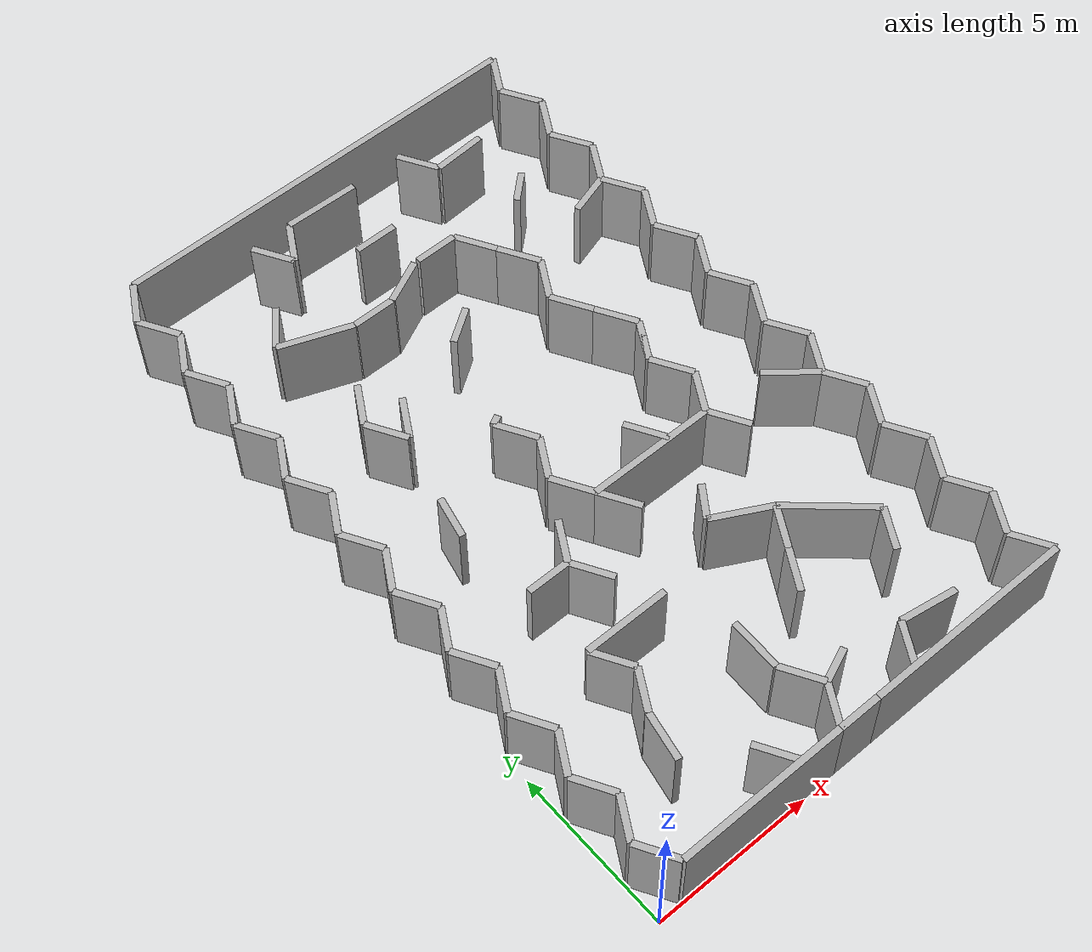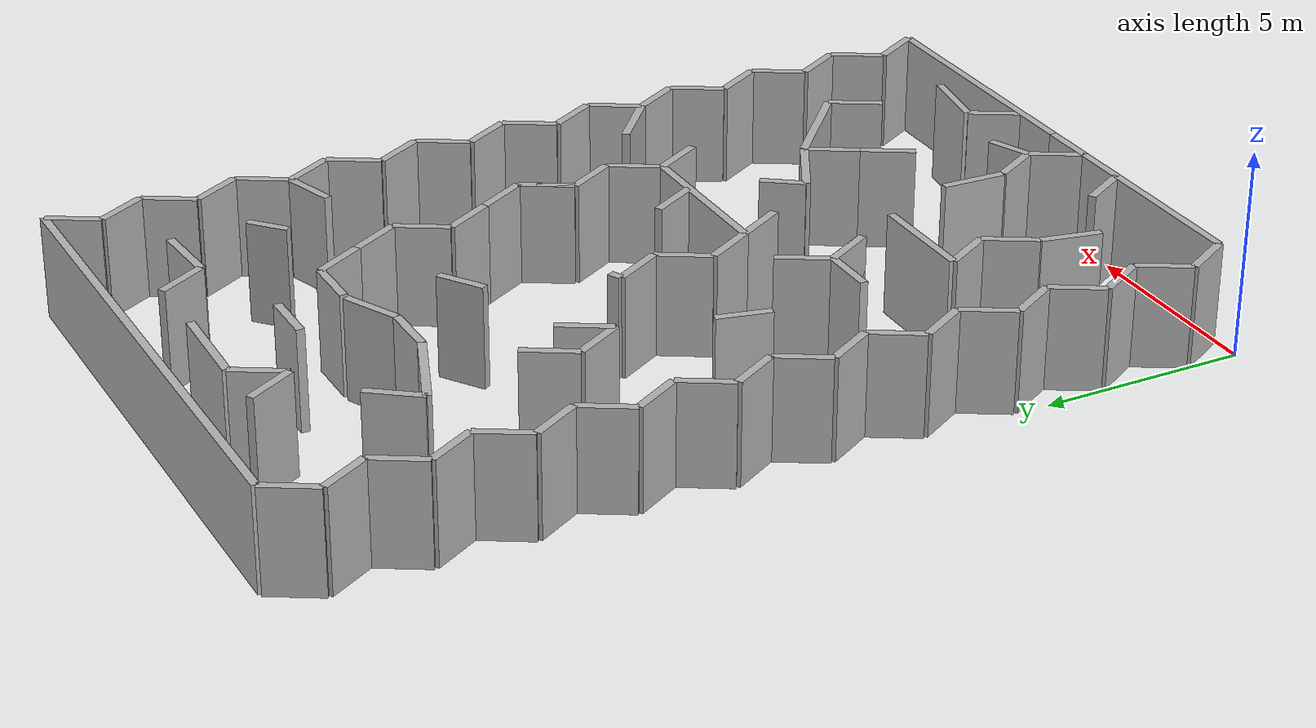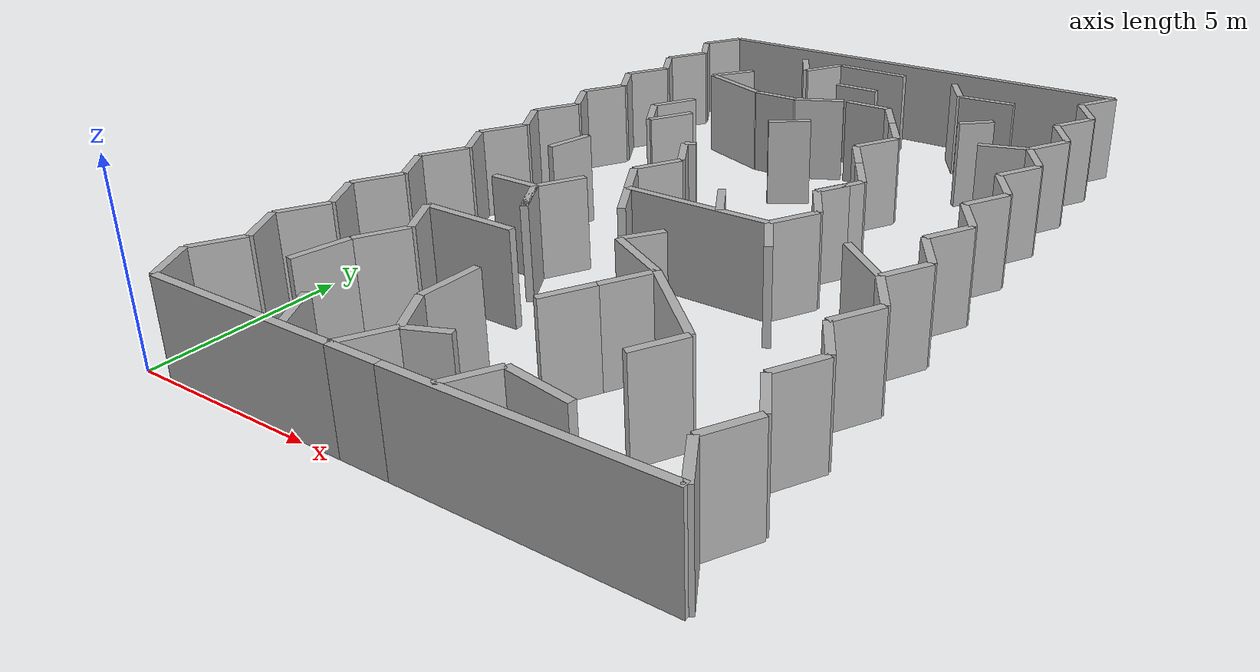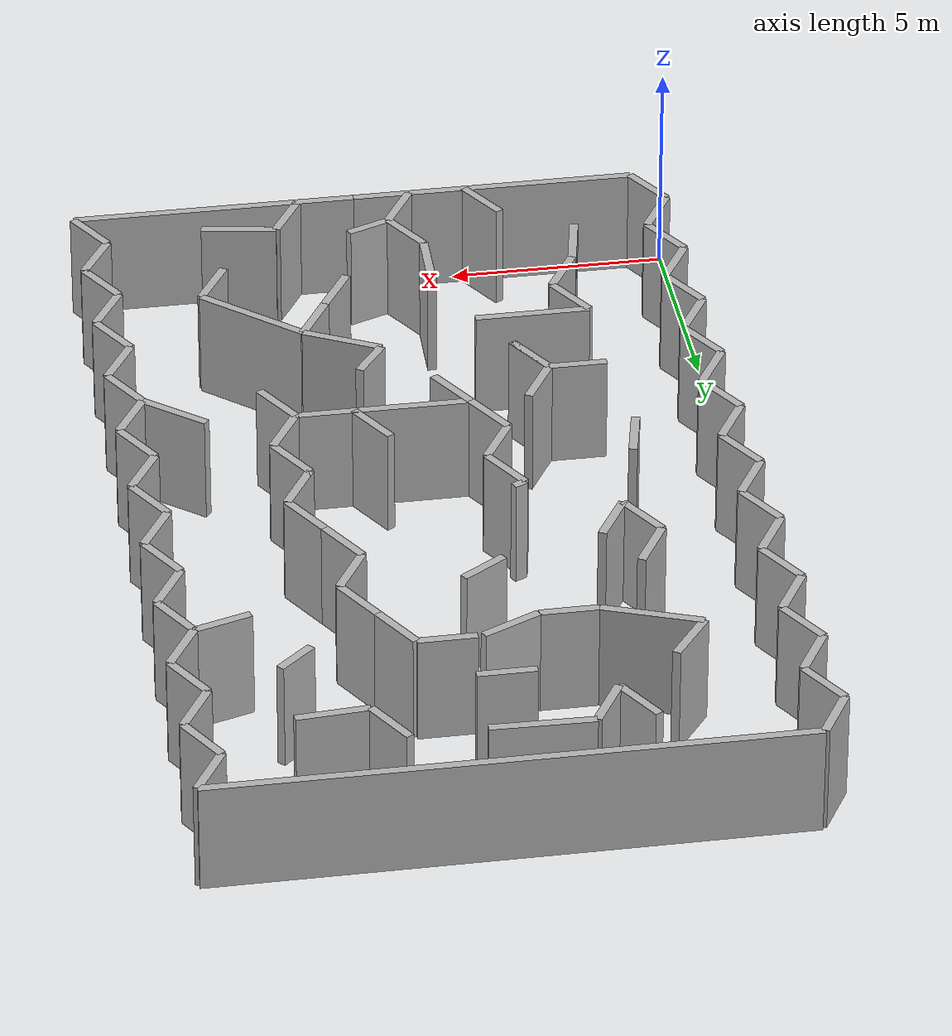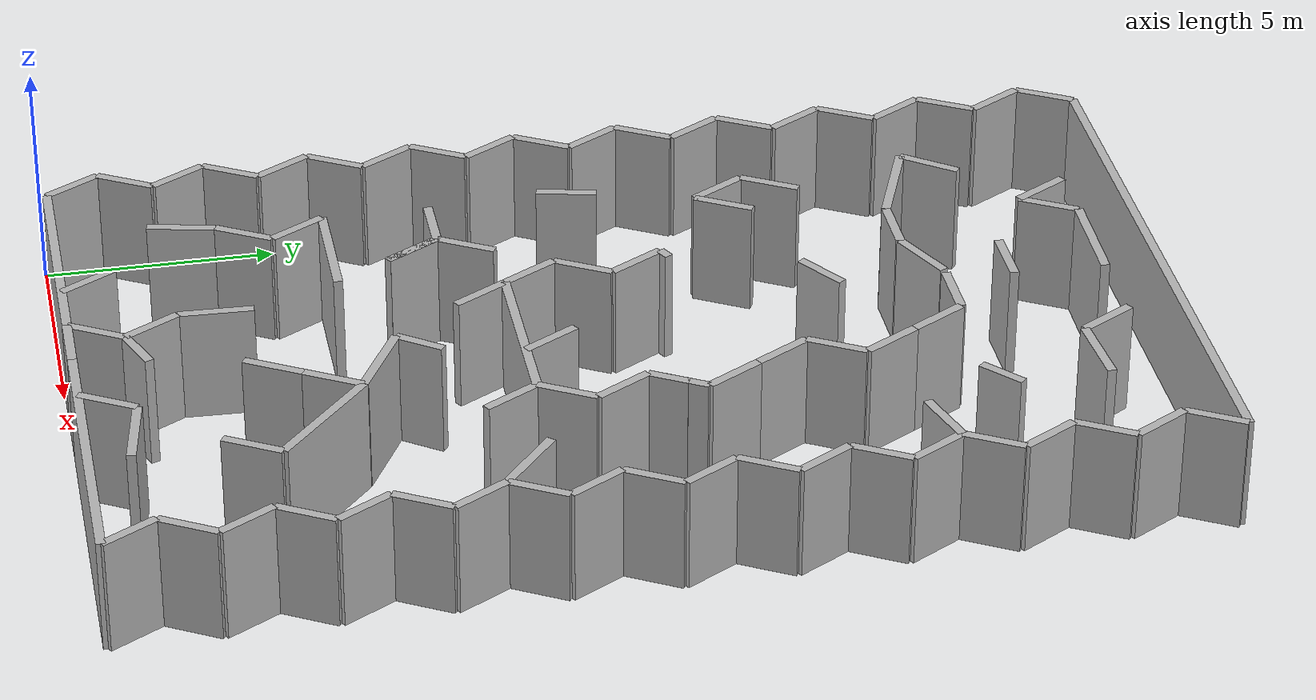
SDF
<?xml version="1.0" ?>
<sdf version="1.6">
  <model name="maze5_lines">
    <static>true</static>
    <link name="wall_0">
      <pose>3.42 0.11999999999999947 1.25 0 0 0.0</pose>
      <collision name="collision">
        <geometry>
          <box><size>5.279999999999999 0.2 2.5</size></box>
        </geometry>
      </collision>
      <visual name="visual">
        <geometry>
          <box><size>5.279999999999999 0.2 2.5</size></box>
        </geometry>
        <material>
          <ambient>0.7 0.7 0.7 1</ambient>
          <diffuse>0.7 0.7 0.7 1</diffuse>
        </material>
      </visual>
    </link>
    <link name="wall_1">
      <pose>10.68 0.11999999999999947 1.25 0 0 0.0</pose>
      <collision name="collision">
        <geometry>
          <box><size>6.599999999999999 0.2 2.5</size></box>
        </geometry>
      </collision>
      <visual name="visual">
        <geometry>
          <box><size>6.599999999999999 0.2 2.5</size></box>
        </geometry>
        <material>
          <ambient>0.7 0.7 0.7 1</ambient>
          <diffuse>0.7 0.7 0.7 1</diffuse>
        </material>
      </visual>
    </link>
    <link name="wall_2">
      <pose>6.72 0.12 1.25 0 0 0.0</pose>
      <collision name="collision">
        <geometry>
          <box><size>1.3200000000000003 0.2 2.5</size></box>
        </geometry>
      </collision>
      <visual name="visual">
        <geometry>
          <box><size>1.3200000000000003 0.2 2.5</size></box>
        </geometry>
        <material>
          <ambient>0.7 0.7 0.7 1</ambient>
          <diffuse>0.7 0.7 0.7 1</diffuse>
        </material>
      </visual>
    </link>
    <link name="wall_3">
      <pose>4.08 5.835767664977294 1.25 0 0 0.0</pose>
      <collision name="collision">
        <geometry>
          <box><size>2.6399999999999997 0.2 2.5</size></box>
        </geometry>
      </collision>
      <visual name="visual">
        <geometry>
          <box><size>2.6399999999999997 0.2 2.5</size></box>
        </geometry>
        <material>
          <ambient>0.7 0.7 0.7 1</ambient>
          <diffuse>0.7 0.7 0.7 1</diffuse>
        </material>
      </visual>
    </link>
    <link name="wall_4">
      <pose>3.42 8.122074 1.25 0 0 0.0</pose>
      <collision name="collision">
        <geometry>
          <box><size>1.3200000000000003 0.2 2.5</size></box>
        </geometry>
      </collision>
      <visual name="visual">
        <geometry>
          <box><size>1.3200000000000003 0.2 2.5</size></box>
        </geometry>
        <material>
          <ambient>0.7 0.7 0.7 1</ambient>
          <diffuse>0.7 0.7 0.7 1</diffuse>
        </material>
      </visual>
    </link>
    <link name="wall_5">
      <pose>8.04 9.265228263963671 1.25 0 0 0.0</pose>
      <collision name="collision">
        <geometry>
          <box><size>3.96 0.2 2.5</size></box>
        </geometry>
      </collision>
      <visual name="visual">
        <geometry>
          <box><size>3.96 0.2 2.5</size></box>
        </geometry>
        <material>
          <ambient>0.7 0.7 0.7 1</ambient>
          <diffuse>0.7 0.7 0.7 1</diffuse>
        </material>
      </visual>
    </link>
    <link name="wall_6">
      <pose>5.29415862 17.7795192 1.25 0 0 0.0</pose>
      <collision name="collision">
        <geometry>
          <box><size>1.3200000000000003 0.2 2.5</size></box>
        </geometry>
      </collision>
      <visual name="visual">
        <geometry>
          <box><size>1.3200000000000003 0.2 2.5</size></box>
        </geometry>
        <material>
          <ambient>0.7 0.7 0.7 1</ambient>
          <diffuse>0.7 0.7 0.7 1</diffuse>
        </material>
      </visual>
    </link>
    <link name="wall_7">
      <pose>6.986619 19.8323088 1.25 0 0 0.0</pose>
      <collision name="collision">
        <geometry>
          <box><size>1.3200000000000003 0.2 2.5</size></box>
        </geometry>
      </collision>
      <visual name="visual">
        <geometry>
          <box><size>1.3200000000000003 0.2 2.5</size></box>
        </geometry>
        <material>
          <ambient>0.7 0.7 0.7 1</ambient>
          <diffuse>0.7 0.7 0.7 1</diffuse>
        </material>
      </visual>
    </link>
    <link name="wall_8">
      <pose>8.04 18.41045652792734 1.25 0 0 0.0</pose>
      <collision name="collision">
        <geometry>
          <box><size>1.3199999999999994 0.2 2.5</size></box>
        </geometry>
      </collision>
      <visual name="visual">
        <geometry>
          <box><size>1.3199999999999994 0.2 2.5</size></box>
        </geometry>
        <material>
          <ambient>0.7 0.7 0.7 1</ambient>
          <diffuse>0.7 0.7 0.7 1</diffuse>
        </material>
      </visual>
    </link>
    <link name="wall_9">
      <pose>7.379999999999999 22.983070659909178 1.25 0 0 0.0</pose>
      <collision name="collision">
        <geometry>
          <box><size>13.2 0.2 2.5</size></box>
        </geometry>
      </collision>
      <visual name="visual">
        <geometry>
          <box><size>13.2 0.2 2.5</size></box>
        </geometry>
        <material>
          <ambient>0.7 0.7 0.7 1</ambient>
          <diffuse>0.7 0.7 0.7 1</diffuse>
        </material>
      </visual>
    </link>
    <link name="wall_10">
      <pose>0.45 0.6915767664977288 1.25 0 0 2.0943951023931957</pose>
      <collision name="collision">
        <geometry>
          <box><size>1.3199999999999996 0.2 2.5</size></box>
        </geometry>
      </collision>
      <visual name="visual">
        <geometry>
          <box><size>1.3199999999999996 0.2 2.5</size></box>
        </geometry>
        <material>
          <ambient>0.7 0.7 0.7 1</ambient>
          <diffuse>0.7 0.7 0.7 1</diffuse>
        </material>
      </visual>
    </link>
    <link name="wall_11">
      <pose>0.45 1.834730299493188 1.25 0 0 1.0471975511965979</pose>
      <collision name="collision">
        <geometry>
          <box><size>1.3200000000000003 0.2 2.5</size></box>
        </geometry>
      </collision>
      <visual name="visual">
        <geometry>
          <box><size>1.3200000000000003 0.2 2.5</size></box>
        </geometry>
        <material>
          <ambient>0.7 0.7 0.7 1</ambient>
          <diffuse>0.7 0.7 0.7 1</diffuse>
        </material>
      </visual>
    </link>
    <link name="wall_12">
      <pose>0.45 2.977883832488647 1.25 0 0 2.0943951023931957</pose>
      <collision name="collision">
        <geometry>
          <box><size>1.3199999999999996 0.2 2.5</size></box>
        </geometry>
      </collision>
      <visual name="visual">
        <geometry>
          <box><size>1.3199999999999996 0.2 2.5</size></box>
        </geometry>
        <material>
          <ambient>0.7 0.7 0.7 1</ambient>
          <diffuse>0.7 0.7 0.7 1</diffuse>
        </material>
      </visual>
    </link>
    <link name="wall_13">
      <pose>0.45 4.121037365484106 1.25 0 0 1.0471975511965979</pose>
      <collision name="collision">
        <geometry>
          <box><size>1.32 0.2 2.5</size></box>
        </geometry>
      </collision>
      <visual name="visual">
        <geometry>
          <box><size>1.32 0.2 2.5</size></box>
        </geometry>
        <material>
          <ambient>0.7 0.7 0.7 1</ambient>
          <diffuse>0.7 0.7 0.7 1</diffuse>
        </material>
      </visual>
    </link>
    <link name="wall_14">
      <pose>0.45 5.264190898479565 1.25 0 0 2.0943951023931953</pose>
      <collision name="collision">
        <geometry>
          <box><size>1.32 0.2 2.5</size></box>
        </geometry>
      </collision>
      <visual name="visual">
        <geometry>
          <box><size>1.32 0.2 2.5</size></box>
        </geometry>
        <material>
          <ambient>0.7 0.7 0.7 1</ambient>
          <diffuse>0.7 0.7 0.7 1</diffuse>
        </material>
      </visual>
    </link>
    <link name="wall_15">
      <pose>0.45 6.407344431475023 1.25 0 0 1.047197551196598</pose>
      <collision name="collision">
        <geometry>
          <box><size>1.320000000000001 0.2 2.5</size></box>
        </geometry>
      </collision>
      <visual name="visual">
        <geometry>
          <box><size>1.320000000000001 0.2 2.5</size></box>
        </geometry>
        <material>
          <ambient>0.7 0.7 0.7 1</ambient>
          <diffuse>0.7 0.7 0.7 1</diffuse>
        </material>
      </visual>
    </link>
    <link name="wall_16">
      <pose>0.45 7.550497964470482 1.25 0 0 2.0943951023931957</pose>
      <collision name="collision">
        <geometry>
          <box><size>1.3199999999999994 0.2 2.5</size></box>
        </geometry>
      </collision>
      <visual name="visual">
        <geometry>
          <box><size>1.3199999999999994 0.2 2.5</size></box>
        </geometry>
        <material>
          <ambient>0.7 0.7 0.7 1</ambient>
          <diffuse>0.7 0.7 0.7 1</diffuse>
        </material>
      </visual>
    </link>
    <link name="wall_17">
      <pose>0.45 8.69365149746594 1.25 0 0 1.0471975511965972</pose>
      <collision name="collision">
        <geometry>
          <box><size>1.3199999999999987 0.2 2.5</size></box>
        </geometry>
      </collision>
      <visual name="visual">
        <geometry>
          <box><size>1.3199999999999987 0.2 2.5</size></box>
        </geometry>
        <material>
          <ambient>0.7 0.7 0.7 1</ambient>
          <diffuse>0.7 0.7 0.7 1</diffuse>
        </material>
      </visual>
    </link>
    <link name="wall_18">
      <pose>0.45 9.8368050304614 1.25 0 0 2.0943951023931953</pose>
      <collision name="collision">
        <geometry>
          <box><size>1.32 0.2 2.5</size></box>
        </geometry>
      </collision>
      <visual name="visual">
        <geometry>
          <box><size>1.32 0.2 2.5</size></box>
        </geometry>
        <material>
          <ambient>0.7 0.7 0.7 1</ambient>
          <diffuse>0.7 0.7 0.7 1</diffuse>
        </material>
      </visual>
    </link>
    <link name="wall_19">
      <pose>0.45 10.979958563456861 1.25 0 0 1.0471975511965972</pose>
      <collision name="collision">
        <geometry>
          <box><size>1.3199999999999987 0.2 2.5</size></box>
        </geometry>
      </collision>
      <visual name="visual">
        <geometry>
          <box><size>1.3199999999999987 0.2 2.5</size></box>
        </geometry>
        <material>
          <ambient>0.7 0.7 0.7 1</ambient>
          <diffuse>0.7 0.7 0.7 1</diffuse>
        </material>
      </visual>
    </link>
    <link name="wall_20">
      <pose>0.45 12.123112096452317 1.25 0 0 2.094395102393196</pose>
      <collision name="collision">
        <geometry>
          <box><size>1.3199999999999987 0.2 2.5</size></box>
        </geometry>
      </collision>
      <visual name="visual">
        <geometry>
          <box><size>1.3199999999999987 0.2 2.5</size></box>
        </geometry>
        <material>
          <ambient>0.7 0.7 0.7 1</ambient>
          <diffuse>0.7 0.7 0.7 1</diffuse>
        </material>
      </visual>
    </link>
    <link name="wall_21">
      <pose>0.45 13.266265629447776 1.25 0 0 1.0471975511965972</pose>
      <collision name="collision">
        <geometry>
          <box><size>1.3199999999999987 0.2 2.5</size></box>
        </geometry>
      </collision>
      <visual name="visual">
        <geometry>
          <box><size>1.3199999999999987 0.2 2.5</size></box>
        </geometry>
        <material>
          <ambient>0.7 0.7 0.7 1</ambient>
          <diffuse>0.7 0.7 0.7 1</diffuse>
        </material>
      </visual>
    </link>
    <link name="wall_22">
      <pose>0.45 14.409419162443236 1.25 0 0 2.094395102393196</pose>
      <collision name="collision">
        <geometry>
          <box><size>1.3199999999999987 0.2 2.5</size></box>
        </geometry>
      </collision>
      <visual name="visual">
        <geometry>
          <box><size>1.3199999999999987 0.2 2.5</size></box>
        </geometry>
        <material>
          <ambient>0.7 0.7 0.7 1</ambient>
          <diffuse>0.7 0.7 0.7 1</diffuse>
        </material>
      </visual>
    </link>
    <link name="wall_23">
      <pose>0.45 15.552572695438693 1.25 0 0 1.0471975511965979</pose>
      <collision name="collision">
        <geometry>
          <box><size>1.32 0.2 2.5</size></box>
        </geometry>
      </collision>
      <visual name="visual">
        <geometry>
          <box><size>1.32 0.2 2.5</size></box>
        </geometry>
        <material>
          <ambient>0.7 0.7 0.7 1</ambient>
          <diffuse>0.7 0.7 0.7 1</diffuse>
        </material>
      </visual>
    </link>
    <link name="wall_24">
      <pose>0.45 16.695726228434154 1.25 0 0 2.094395102393194</pose>
      <collision name="collision">
        <geometry>
          <box><size>1.3200000000000032 0.2 2.5</size></box>
        </geometry>
      </collision>
      <visual name="visual">
        <geometry>
          <box><size>1.3200000000000032 0.2 2.5</size></box>
        </geometry>
        <material>
          <ambient>0.7 0.7 0.7 1</ambient>
          <diffuse>0.7 0.7 0.7 1</diffuse>
        </material>
      </visual>
    </link>
    <link name="wall_25">
      <pose>0.45 17.838879761429617 1.25 0 0 1.0471975511965992</pose>
      <collision name="collision">
        <geometry>
          <box><size>1.3200000000000032 0.2 2.5</size></box>
        </geometry>
      </collision>
      <visual name="visual">
        <geometry>
          <box><size>1.3200000000000032 0.2 2.5</size></box>
        </geometry>
        <material>
          <ambient>0.7 0.7 0.7 1</ambient>
          <diffuse>0.7 0.7 0.7 1</diffuse>
        </material>
      </visual>
    </link>
    <link name="wall_26">
      <pose>0.45 18.982033294425072 1.25 0 0 2.0943951023931953</pose>
      <collision name="collision">
        <geometry>
          <box><size>1.32 0.2 2.5</size></box>
        </geometry>
      </collision>
      <visual name="visual">
        <geometry>
          <box><size>1.32 0.2 2.5</size></box>
        </geometry>
        <material>
          <ambient>0.7 0.7 0.7 1</ambient>
          <diffuse>0.7 0.7 0.7 1</diffuse>
        </material>
      </visual>
    </link>
    <link name="wall_27">
      <pose>0.45 20.12518682742053 1.25 0 0 1.0471975511965992</pose>
      <collision name="collision">
        <geometry>
          <box><size>1.3200000000000032 0.2 2.5</size></box>
        </geometry>
      </collision>
      <visual name="visual">
        <geometry>
          <box><size>1.3200000000000032 0.2 2.5</size></box>
        </geometry>
        <material>
          <ambient>0.7 0.7 0.7 1</ambient>
          <diffuse>0.7 0.7 0.7 1</diffuse>
        </material>
      </visual>
    </link>
    <link name="wall_28">
      <pose>0.45 21.26834036041599 1.25 0 0 2.0943951023931953</pose>
      <collision name="collision">
        <geometry>
          <box><size>1.32 0.2 2.5</size></box>
        </geometry>
      </collision>
      <visual name="visual">
        <geometry>
          <box><size>1.32 0.2 2.5</size></box>
        </geometry>
        <material>
          <ambient>0.7 0.7 0.7 1</ambient>
          <diffuse>0.7 0.7 0.7 1</diffuse>
        </material>
      </visual>
    </link>
    <link name="wall_29">
      <pose>0.45 22.411493893411446 1.25 0 0 1.0471975511965992</pose>
      <collision name="collision">
        <geometry>
          <box><size>1.3200000000000032 0.2 2.5</size></box>
        </geometry>
      </collision>
      <visual name="visual">
        <geometry>
          <box><size>1.3200000000000032 0.2 2.5</size></box>
        </geometry>
        <material>
          <ambient>0.7 0.7 0.7 1</ambient>
          <diffuse>0.7 0.7 0.7 1</diffuse>
        </material>
      </visual>
    </link>
    <link name="wall_30">
      <pose>4.41 21.2683392 1.25 0 0 2.0943950770126882</pose>
      <collision name="collision">
        <geometry>
          <box><size>1.3200000580276365 0.2 2.5</size></box>
        </geometry>
      </collision>
      <visual name="visual">
        <geometry>
          <box><size>1.3200000580276365 0.2 2.5</size></box>
        </geometry>
        <material>
          <ambient>0.7 0.7 0.7 1</ambient>
          <diffuse>0.7 0.7 0.7 1</diffuse>
        </material>
      </visual>
    </link>
    <link name="wall_31">
      <pose>3.09 4.121037365484106 1.25 0 0 1.0471975511965976</pose>
      <collision name="collision">
        <geometry>
          <box><size>1.3200000000000003 0.2 2.5</size></box>
        </geometry>
      </collision>
      <visual name="visual">
        <geometry>
          <box><size>1.3200000000000003 0.2 2.5</size></box>
        </geometry>
        <material>
          <ambient>0.7 0.7 0.7 1</ambient>
          <diffuse>0.7 0.7 0.7 1</diffuse>
        </material>
      </visual>
    </link>
    <link name="wall_32">
      <pose>3.09 5.264190898479565 1.25 0 0 2.0943951023931957</pose>
      <collision name="collision">
        <geometry>
          <box><size>1.3200000000000003 0.2 2.5</size></box>
        </geometry>
      </collision>
      <visual name="visual">
        <geometry>
          <box><size>1.3200000000000003 0.2 2.5</size></box>
        </geometry>
        <material>
          <ambient>0.7 0.7 0.7 1</ambient>
          <diffuse>0.7 0.7 0.7 1</diffuse>
        </material>
      </visual>
    </link>
    <link name="wall_33">
      <pose>4.41 7.5504975 1.25 0 0 2.0943953042854857</pose>
      <collision name="collision">
        <geometry>
          <box><size>1.3199995384124192 0.2 2.5</size></box>
        </geometry>
      </collision>
      <visual name="visual">
        <geometry>
          <box><size>1.3199995384124192 0.2 2.5</size></box>
        </geometry>
        <material>
          <ambient>0.7 0.7 0.7 1</ambient>
          <diffuse>0.7 0.7 0.7 1</diffuse>
        </material>
      </visual>
    </link>
    <link name="wall_34">
      <pose>3.75 14.409419399999999 1.25 0 0 1.047197576577105</pose>
      <collision name="collision">
        <geometry>
          <box><size>1.3200000580276365 0.2 2.5</size></box>
        </geometry>
      </collision>
      <visual name="visual">
        <geometry>
          <box><size>1.3200000580276365 0.2 2.5</size></box>
        </geometry>
        <material>
          <ambient>0.7 0.7 0.7 1</ambient>
          <diffuse>0.7 0.7 0.7 1</diffuse>
        </material>
      </visual>
    </link>
    <link name="wall_35">
      <pose>4.41 0.6915767664977288 1.25 0 0 2.0943951023931957</pose>
      <collision name="collision">
        <geometry>
          <box><size>1.3199999999999998 0.2 2.5</size></box>
        </geometry>
      </collision>
      <visual name="visual">
        <geometry>
          <box><size>1.3199999999999998 0.2 2.5</size></box>
        </geometry>
        <material>
          <ambient>0.7 0.7 0.7 1</ambient>
          <diffuse>0.7 0.7 0.7 1</diffuse>
        </material>
      </visual>
    </link>
    <link name="wall_36">
      <pose>4.41 7.550497964470482 1.25 0 0 2.0943951023931957</pose>
      <collision name="collision">
        <geometry>
          <box><size>1.3199999999999994 0.2 2.5</size></box>
        </geometry>
      </collision>
      <visual name="visual">
        <geometry>
          <box><size>1.3199999999999994 0.2 2.5</size></box>
        </geometry>
        <material>
          <ambient>0.7 0.7 0.7 1</ambient>
          <diffuse>0.7 0.7 0.7 1</diffuse>
        </material>
      </visual>
    </link>
    <link name="wall_37">
      <pose>4.41 8.69365149746594 1.25 0 0 1.047197551196597</pose>
      <collision name="collision">
        <geometry>
          <box><size>1.3199999999999987 0.2 2.5</size></box>
        </geometry>
      </collision>
      <visual name="visual">
        <geometry>
          <box><size>1.3199999999999987 0.2 2.5</size></box>
        </geometry>
        <material>
          <ambient>0.7 0.7 0.7 1</ambient>
          <diffuse>0.7 0.7 0.7 1</diffuse>
        </material>
      </visual>
    </link>
    <link name="wall_38">
      <pose>5.3999999999999995 10.408381199999999 1.25 0 0 0.0</pose>
      <collision name="collision">
        <geometry>
          <box><size>0.0 0.2 2.5</size></box>
        </geometry>
      </collision>
      <visual name="visual">
        <geometry>
          <box><size>0.0 0.2 2.5</size></box>
        </geometry>
        <material>
          <ambient>0.7 0.7 0.7 1</ambient>
          <diffuse>0.7 0.7 0.7 1</diffuse>
        </material>
      </visual>
    </link>
    <link name="wall_39">
      <pose>3.09 15.552572099999999 1.25 0 0 1.047197349304309</pose>
      <collision name="collision">
        <geometry>
          <box><size>1.3199995384124223 0.2 2.5</size></box>
        </geometry>
      </collision>
      <visual name="visual">
        <geometry>
          <box><size>1.3199995384124223 0.2 2.5</size></box>
        </geometry>
        <material>
          <ambient>0.7 0.7 0.7 1</ambient>
          <diffuse>0.7 0.7 0.7 1</diffuse>
        </material>
      </visual>
    </link>
    <link name="wall_40">
      <pose>5.7299999999999995 9.8368050304614 1.25 0 0 2.0943951023931957</pose>
      <collision name="collision">
        <geometry>
          <box><size>1.3200000000000003 0.2 2.5</size></box>
        </geometry>
      </collision>
      <visual name="visual">
        <geometry>
          <box><size>1.3200000000000003 0.2 2.5</size></box>
        </geometry>
        <material>
          <ambient>0.7 0.7 0.7 1</ambient>
          <diffuse>0.7 0.7 0.7 1</diffuse>
        </material>
      </visual>
    </link>
    <link name="wall_41">
      <pose>5.7299999999999995 10.979958563456861 1.25 0 0 1.047197551196597</pose>
      <collision name="collision">
        <geometry>
          <box><size>1.3199999999999987 0.2 2.5</size></box>
        </geometry>
      </collision>
      <visual name="visual">
        <geometry>
          <box><size>1.3199999999999987 0.2 2.5</size></box>
        </geometry>
        <material>
          <ambient>0.7 0.7 0.7 1</ambient>
          <diffuse>0.7 0.7 0.7 1</diffuse>
        </material>
      </visual>
    </link>
    <link name="wall_42">
      <pose>5.7299999999999995 12.123112096452317 1.25 0 0 2.094395102393196</pose>
      <collision name="collision">
        <geometry>
          <box><size>1.3199999999999987 0.2 2.5</size></box>
        </geometry>
      </collision>
      <visual name="visual">
        <geometry>
          <box><size>1.3199999999999987 0.2 2.5</size></box>
        </geometry>
        <material>
          <ambient>0.7 0.7 0.7 1</ambient>
          <diffuse>0.7 0.7 0.7 1</diffuse>
        </material>
      </visual>
    </link>
    <link name="wall_43">
      <pose>3.09 14.409419099999997 1.25 0 0 2.0943953042854857</pose>
      <collision name="collision">
        <geometry>
          <box><size>1.3199995384124192 0.2 2.5</size></box>
        </geometry>
      </collision>
      <visual name="visual">
        <geometry>
          <box><size>1.3199995384124192 0.2 2.5</size></box>
        </geometry>
        <material>
          <ambient>0.7 0.7 0.7 1</ambient>
          <diffuse>0.7 0.7 0.7 1</diffuse>
        </material>
      </visual>
    </link>
    <link name="wall_44">
      <pose>6.39 8.69365149746594 1.25 0 0 2.094395102393196</pose>
      <collision name="collision">
        <geometry>
          <box><size>1.3199999999999987 0.2 2.5</size></box>
        </geometry>
      </collision>
      <visual name="visual">
        <geometry>
          <box><size>1.3199999999999987 0.2 2.5</size></box>
        </geometry>
        <material>
          <ambient>0.7 0.7 0.7 1</ambient>
          <diffuse>0.7 0.7 0.7 1</diffuse>
        </material>
      </visual>
    </link>
    <link name="wall_45">
      <pose>9.03 0.69157677 1.25 0 0 1.0471975538498328</pose>
      <collision name="collision">
        <geometry>
          <box><size>1.3200000060661103 0.2 2.5</size></box>
        </geometry>
      </collision>
      <visual name="visual">
        <geometry>
          <box><size>1.3200000060661103 0.2 2.5</size></box>
        </geometry>
        <material>
          <ambient>0.7 0.7 0.7 1</ambient>
          <diffuse>0.7 0.7 0.7 1</diffuse>
        </material>
      </visual>
    </link>
    <link name="wall_46">
      <pose>6.60582201 18.0937308 1.25 0 0 0.4492809693354597</pose>
      <collision name="collision">
        <geometry>
          <box><size>1.4469196293379278 0.2 2.5</size></box>
        </geometry>
      </collision>
      <visual name="visual">
        <geometry>
          <box><size>1.4469196293379278 0.2 2.5</size></box>
        </geometry>
        <material>
          <ambient>0.7 0.7 0.7 1</ambient>
          <diffuse>0.7 0.7 0.7 1</diffuse>
        </material>
      </visual>
    </link>
    <link name="wall_47">
      <pose>8.37 4.121037365484106 1.25 0 0 1.0471975511965976</pose>
      <collision name="collision">
        <geometry>
          <box><size>1.3200000000000003 0.2 2.5</size></box>
        </geometry>
      </collision>
      <visual name="visual">
        <geometry>
          <box><size>1.3200000000000003 0.2 2.5</size></box>
        </geometry>
        <material>
          <ambient>0.7 0.7 0.7 1</ambient>
          <diffuse>0.7 0.7 0.7 1</diffuse>
        </material>
      </visual>
    </link>
    <link name="wall_48">
      <pose>8.37 9.8368050304614 1.25 0 0 2.0943951023931957</pose>
      <collision name="collision">
        <geometry>
          <box><size>1.3200000000000003 0.2 2.5</size></box>
        </geometry>
      </collision>
      <visual name="visual">
        <geometry>
          <box><size>1.3200000000000003 0.2 2.5</size></box>
        </geometry>
        <material>
          <ambient>0.7 0.7 0.7 1</ambient>
          <diffuse>0.7 0.7 0.7 1</diffuse>
        </material>
      </visual>
    </link>
    <link name="wall_49">
      <pose>9.03 5.264190898479565 1.25 0 0 1.0471975511965976</pose>
      <collision name="collision">
        <geometry>
          <box><size>1.3200000000000003 0.2 2.5</size></box>
        </geometry>
      </collision>
      <visual name="visual">
        <geometry>
          <box><size>1.3200000000000003 0.2 2.5</size></box>
        </geometry>
        <material>
          <ambient>0.7 0.7 0.7 1</ambient>
          <diffuse>0.7 0.7 0.7 1</diffuse>
        </material>
      </visual>
    </link>
    <link name="wall_50">
      <pose>6.39 1.8347303099999999 1.25 0 0 2.0943950997399603</pose>
      <collision name="collision">
        <geometry>
          <box><size>1.3200000060661106 0.2 2.5</size></box>
        </geometry>
      </collision>
      <visual name="visual">
        <geometry>
          <box><size>1.3200000060661106 0.2 2.5</size></box>
        </geometry>
        <material>
          <ambient>0.7 0.7 0.7 1</ambient>
          <diffuse>0.7 0.7 0.7 1</diffuse>
        </material>
      </visual>
    </link>
    <link name="wall_51">
      <pose>9.03 17.838879761429617 1.25 0 0 2.0943951023931944</pose>
      <collision name="collision">
        <geometry>
          <box><size>1.3200000000000034 0.2 2.5</size></box>
        </geometry>
      </collision>
      <visual name="visual">
        <geometry>
          <box><size>1.3200000000000034 0.2 2.5</size></box>
        </geometry>
        <material>
          <ambient>0.7 0.7 0.7 1</ambient>
          <diffuse>0.7 0.7 0.7 1</diffuse>
        </material>
      </visual>
    </link>
    <link name="wall_52">
      <pose>5.07 21.268340099999996 1.25 0 0 1.0471982583944222</pose>
      <collision name="collision">
        <geometry>
          <box><size>1.3200016168736923 0.2 2.5</size></box>
        </geometry>
      </collision>
      <visual name="visual">
        <geometry>
          <box><size>1.3200016168736923 0.2 2.5</size></box>
        </geometry>
        <material>
          <ambient>0.7 0.7 0.7 1</ambient>
          <diffuse>0.7 0.7 0.7 1</diffuse>
        </material>
      </visual>
    </link>
    <link name="wall_53">
      <pose>10.2446415 11.9355675 1.25 0 0 1.0415141402839396</pose>
      <collision name="collision">
        <geometry>
          <box><size>0.8898210584856716 0.2 2.5</size></box>
        </geometry>
      </collision>
      <visual name="visual">
        <geometry>
          <box><size>0.8898210584856716 0.2 2.5</size></box>
        </geometry>
        <material>
          <ambient>0.7 0.7 0.7 1</ambient>
          <diffuse>0.7 0.7 0.7 1</diffuse>
        </material>
      </visual>
    </link>
    <link name="wall_54">
      <pose>9.69 14.409419162443236 1.25 0 0 2.094395102393196</pose>
      <collision name="collision">
        <geometry>
          <box><size>1.3199999999999987 0.2 2.5</size></box>
        </geometry>
      </collision>
      <visual name="visual">
        <geometry>
          <box><size>1.3199999999999987 0.2 2.5</size></box>
        </geometry>
        <material>
          <ambient>0.7 0.7 0.7 1</ambient>
          <diffuse>0.7 0.7 0.7 1</diffuse>
        </material>
      </visual>
    </link>
    <link name="wall_55">
      <pose>9.69 15.552572695438693 1.25 0 0 1.0471975511965976</pose>
      <collision name="collision">
        <geometry>
          <box><size>1.3200000000000003 0.2 2.5</size></box>
        </geometry>
      </collision>
      <visual name="visual">
        <geometry>
          <box><size>1.3200000000000003 0.2 2.5</size></box>
        </geometry>
        <material>
          <ambient>0.7 0.7 0.7 1</ambient>
          <diffuse>0.7 0.7 0.7 1</diffuse>
        </material>
      </visual>
    </link>
    <link name="wall_56">
      <pose>9.69 16.695726228434154 1.25 0 0 2.0943951023931944</pose>
      <collision name="collision">
        <geometry>
          <box><size>1.3200000000000034 0.2 2.5</size></box>
        </geometry>
      </collision>
      <visual name="visual">
        <geometry>
          <box><size>1.3200000000000034 0.2 2.5</size></box>
        </geometry>
        <material>
          <ambient>0.7 0.7 0.7 1</ambient>
          <diffuse>0.7 0.7 0.7 1</diffuse>
        </material>
      </visual>
    </link>
    <link name="wall_57">
      <pose>10.35 9.8368050304614 1.25 0 0 1.0471975511965976</pose>
      <collision name="collision">
        <geometry>
          <box><size>1.3200000000000003 0.2 2.5</size></box>
        </geometry>
      </collision>
      <visual name="visual">
        <geometry>
          <box><size>1.3200000000000003 0.2 2.5</size></box>
        </geometry>
        <material>
          <ambient>0.7 0.7 0.7 1</ambient>
          <diffuse>0.7 0.7 0.7 1</diffuse>
        </material>
      </visual>
    </link>
    <link name="wall_58">
      <pose>10.35 12.123112096452317 1.25 0 0 1.047197551196597</pose>
      <collision name="collision">
        <geometry>
          <box><size>1.3199999999999987 0.2 2.5</size></box>
        </geometry>
      </collision>
      <visual name="visual">
        <geometry>
          <box><size>1.3199999999999987 0.2 2.5</size></box>
        </geometry>
        <material>
          <ambient>0.7 0.7 0.7 1</ambient>
          <diffuse>0.7 0.7 0.7 1</diffuse>
        </material>
      </visual>
    </link>
    <link name="wall_59">
      <pose>10.35 13.266265629447776 1.25 0 0 2.094395102393196</pose>
      <collision name="collision">
        <geometry>
          <box><size>1.3199999999999987 0.2 2.5</size></box>
        </geometry>
      </collision>
      <visual name="visual">
        <geometry>
          <box><size>1.3199999999999987 0.2 2.5</size></box>
        </geometry>
        <material>
          <ambient>0.7 0.7 0.7 1</ambient>
          <diffuse>0.7 0.7 0.7 1</diffuse>
        </material>
      </visual>
    </link>
    <link name="wall_60">
      <pose>10.35 10.9799577 1.25 0 0 2.0943953042854857</pose>
      <collision name="collision">
        <geometry>
          <box><size>1.3199995384124192 0.2 2.5</size></box>
        </geometry>
      </collision>
      <visual name="visual">
        <geometry>
          <box><size>1.3199995384124192 0.2 2.5</size></box>
        </geometry>
        <material>
          <ambient>0.7 0.7 0.7 1</ambient>
          <diffuse>0.7 0.7 0.7 1</diffuse>
        </material>
      </visual>
    </link>
    <link name="wall_61">
      <pose>6.39 0.69157677 1.25 0 0 1.0471975538498328</pose>
      <collision name="collision">
        <geometry>
          <box><size>1.3200000060661103 0.2 2.5</size></box>
        </geometry>
      </collision>
      <visual name="visual">
        <geometry>
          <box><size>1.3200000060661103 0.2 2.5</size></box>
        </geometry>
        <material>
          <ambient>0.7 0.7 0.7 1</ambient>
          <diffuse>0.7 0.7 0.7 1</diffuse>
        </material>
      </visual>
    </link>
    <link name="wall_62">
      <pose>10.35 8.6936511 1.25 0 0 2.094394849740071</pose>
      <collision name="collision">
        <geometry>
          <box><size>1.320000577642919 0.2 2.5</size></box>
        </geometry>
      </collision>
      <visual name="visual">
        <geometry>
          <box><size>1.320000577642919 0.2 2.5</size></box>
        </geometry>
        <material>
          <ambient>0.7 0.7 0.7 1</ambient>
          <diffuse>0.7 0.7 0.7 1</diffuse>
        </material>
      </visual>
    </link>
    <link name="wall_63">
      <pose>9.69 21.2683413 1.25 0 0 2.094395304285486</pose>
      <collision name="collision">
        <geometry>
          <box><size>1.3199995384124177 0.2 2.5</size></box>
        </geometry>
      </collision>
      <visual name="visual">
        <geometry>
          <box><size>1.3199995384124177 0.2 2.5</size></box>
        </geometry>
        <material>
          <ambient>0.7 0.7 0.7 1</ambient>
          <diffuse>0.7 0.7 0.7 1</diffuse>
        </material>
      </visual>
    </link>
    <link name="wall_64">
      <pose>11.125764599999998 3.3824897099999998 1.25 0 0 1.0471975538498328</pose>
      <collision name="collision">
        <geometry>
          <box><size>1.3200000060661103 0.2 2.5</size></box>
        </geometry>
      </collision>
      <visual name="visual">
        <geometry>
          <box><size>1.3200000060661103 0.2 2.5</size></box>
        </geometry>
        <material>
          <ambient>0.7 0.7 0.7 1</ambient>
          <diffuse>0.7 0.7 0.7 1</diffuse>
        </material>
      </visual>
    </link>
    <link name="wall_65">
      <pose>13.649999999999999 0.6915767664977288 1.25 0 0 2.0943951023931944</pose>
      <collision name="collision">
        <geometry>
          <box><size>1.319999999999999 0.2 2.5</size></box>
        </geometry>
      </collision>
      <visual name="visual">
        <geometry>
          <box><size>1.319999999999999 0.2 2.5</size></box>
        </geometry>
        <material>
          <ambient>0.7 0.7 0.7 1</ambient>
          <diffuse>0.7 0.7 0.7 1</diffuse>
        </material>
      </visual>
    </link>
    <link name="wall_66">
      <pose>13.649999999999999 1.834730299493188 1.25 0 0 1.047197551196599</pose>
      <collision name="collision">
        <geometry>
          <box><size>1.3199999999999994 0.2 2.5</size></box>
        </geometry>
      </collision>
      <visual name="visual">
        <geometry>
          <box><size>1.3199999999999994 0.2 2.5</size></box>
        </geometry>
        <material>
          <ambient>0.7 0.7 0.7 1</ambient>
          <diffuse>0.7 0.7 0.7 1</diffuse>
        </material>
      </visual>
    </link>
    <link name="wall_67">
      <pose>13.649999999999999 2.977883832488647 1.25 0 0 2.0943951023931944</pose>
      <collision name="collision">
        <geometry>
          <box><size>1.319999999999999 0.2 2.5</size></box>
        </geometry>
      </collision>
      <visual name="visual">
        <geometry>
          <box><size>1.319999999999999 0.2 2.5</size></box>
        </geometry>
        <material>
          <ambient>0.7 0.7 0.7 1</ambient>
          <diffuse>0.7 0.7 0.7 1</diffuse>
        </material>
      </visual>
    </link>
    <link name="wall_68">
      <pose>13.649999999999999 4.121037365484106 1.25 0 0 1.047197551196599</pose>
      <collision name="collision">
        <geometry>
          <box><size>1.3199999999999994 0.2 2.5</size></box>
        </geometry>
      </collision>
      <visual name="visual">
        <geometry>
          <box><size>1.3199999999999994 0.2 2.5</size></box>
        </geometry>
        <material>
          <ambient>0.7 0.7 0.7 1</ambient>
          <diffuse>0.7 0.7 0.7 1</diffuse>
        </material>
      </visual>
    </link>
    <link name="wall_69">
      <pose>13.649999999999999 5.264190898479565 1.25 0 0 2.0943951023931944</pose>
      <collision name="collision">
        <geometry>
          <box><size>1.3199999999999994 0.2 2.5</size></box>
        </geometry>
      </collision>
      <visual name="visual">
        <geometry>
          <box><size>1.3199999999999994 0.2 2.5</size></box>
        </geometry>
        <material>
          <ambient>0.7 0.7 0.7 1</ambient>
          <diffuse>0.7 0.7 0.7 1</diffuse>
        </material>
      </visual>
    </link>
    <link name="wall_70">
      <pose>13.649999999999999 6.407344431475023 1.25 0 0 1.0471975511965992</pose>
      <collision name="collision">
        <geometry>
          <box><size>1.32 0.2 2.5</size></box>
        </geometry>
      </collision>
      <visual name="visual">
        <geometry>
          <box><size>1.32 0.2 2.5</size></box>
        </geometry>
        <material>
          <ambient>0.7 0.7 0.7 1</ambient>
          <diffuse>0.7 0.7 0.7 1</diffuse>
        </material>
      </visual>
    </link>
    <link name="wall_71">
      <pose>13.649999999999999 7.550497964470482 1.25 0 0 2.094395102393195</pose>
      <collision name="collision">
        <geometry>
          <box><size>1.3199999999999985 0.2 2.5</size></box>
        </geometry>
      </collision>
      <visual name="visual">
        <geometry>
          <box><size>1.3199999999999985 0.2 2.5</size></box>
        </geometry>
        <material>
          <ambient>0.7 0.7 0.7 1</ambient>
          <diffuse>0.7 0.7 0.7 1</diffuse>
        </material>
      </visual>
    </link>
    <link name="wall_72">
      <pose>13.649999999999999 8.69365149746594 1.25 0 0 1.0471975511965983</pose>
      <collision name="collision">
        <geometry>
          <box><size>1.3199999999999978 0.2 2.5</size></box>
        </geometry>
      </collision>
      <visual name="visual">
        <geometry>
          <box><size>1.3199999999999978 0.2 2.5</size></box>
        </geometry>
        <material>
          <ambient>0.7 0.7 0.7 1</ambient>
          <diffuse>0.7 0.7 0.7 1</diffuse>
        </material>
      </visual>
    </link>
    <link name="wall_73">
      <pose>13.649999999999999 9.8368050304614 1.25 0 0 2.0943951023931944</pose>
      <collision name="collision">
        <geometry>
          <box><size>1.3199999999999994 0.2 2.5</size></box>
        </geometry>
      </collision>
      <visual name="visual">
        <geometry>
          <box><size>1.3199999999999994 0.2 2.5</size></box>
        </geometry>
        <material>
          <ambient>0.7 0.7 0.7 1</ambient>
          <diffuse>0.7 0.7 0.7 1</diffuse>
        </material>
      </visual>
    </link>
    <link name="wall_74">
      <pose>13.649999999999999 10.979958563456861 1.25 0 0 1.0471975511965983</pose>
      <collision name="collision">
        <geometry>
          <box><size>1.3199999999999978 0.2 2.5</size></box>
        </geometry>
      </collision>
      <visual name="visual">
        <geometry>
          <box><size>1.3199999999999978 0.2 2.5</size></box>
        </geometry>
        <material>
          <ambient>0.7 0.7 0.7 1</ambient>
          <diffuse>0.7 0.7 0.7 1</diffuse>
        </material>
      </visual>
    </link>
    <link name="wall_75">
      <pose>13.649999999999999 12.123112096452317 1.25 0 0 2.094395102393195</pose>
      <collision name="collision">
        <geometry>
          <box><size>1.3199999999999978 0.2 2.5</size></box>
        </geometry>
      </collision>
      <visual name="visual">
        <geometry>
          <box><size>1.3199999999999978 0.2 2.5</size></box>
        </geometry>
        <material>
          <ambient>0.7 0.7 0.7 1</ambient>
          <diffuse>0.7 0.7 0.7 1</diffuse>
        </material>
      </visual>
    </link>
    <link name="wall_76">
      <pose>13.649999999999999 13.266265629447776 1.25 0 0 1.0471975511965983</pose>
      <collision name="collision">
        <geometry>
          <box><size>1.3199999999999978 0.2 2.5</size></box>
        </geometry>
      </collision>
      <visual name="visual">
        <geometry>
          <box><size>1.3199999999999978 0.2 2.5</size></box>
        </geometry>
        <material>
          <ambient>0.7 0.7 0.7 1</ambient>
          <diffuse>0.7 0.7 0.7 1</diffuse>
        </material>
      </visual>
    </link>
    <link name="wall_77">
      <pose>13.649999999999999 14.409419162443236 1.25 0 0 2.094395102393195</pose>
      <collision name="collision">
        <geometry>
          <box><size>1.3199999999999978 0.2 2.5</size></box>
        </geometry>
      </collision>
      <visual name="visual">
        <geometry>
          <box><size>1.3199999999999978 0.2 2.5</size></box>
        </geometry>
        <material>
          <ambient>0.7 0.7 0.7 1</ambient>
          <diffuse>0.7 0.7 0.7 1</diffuse>
        </material>
      </visual>
    </link>
    <link name="wall_78">
      <pose>13.649999999999999 15.552572695438693 1.25 0 0 1.047197551196599</pose>
      <collision name="collision">
        <geometry>
          <box><size>1.3199999999999994 0.2 2.5</size></box>
        </geometry>
      </collision>
      <visual name="visual">
        <geometry>
          <box><size>1.3199999999999994 0.2 2.5</size></box>
        </geometry>
        <material>
          <ambient>0.7 0.7 0.7 1</ambient>
          <diffuse>0.7 0.7 0.7 1</diffuse>
        </material>
      </visual>
    </link>
    <link name="wall_79">
      <pose>13.649999999999999 16.695726228434154 1.25 0 0 2.094395102393193</pose>
      <collision name="collision">
        <geometry>
          <box><size>1.3200000000000025 0.2 2.5</size></box>
        </geometry>
      </collision>
      <visual name="visual">
        <geometry>
          <box><size>1.3200000000000025 0.2 2.5</size></box>
        </geometry>
        <material>
          <ambient>0.7 0.7 0.7 1</ambient>
          <diffuse>0.7 0.7 0.7 1</diffuse>
        </material>
      </visual>
    </link>
    <link name="wall_80">
      <pose>13.649999999999999 17.838879761429617 1.25 0 0 1.0471975511966003</pose>
      <collision name="collision">
        <geometry>
          <box><size>1.3200000000000025 0.2 2.5</size></box>
        </geometry>
      </collision>
      <visual name="visual">
        <geometry>
          <box><size>1.3200000000000025 0.2 2.5</size></box>
        </geometry>
        <material>
          <ambient>0.7 0.7 0.7 1</ambient>
          <diffuse>0.7 0.7 0.7 1</diffuse>
        </material>
      </visual>
    </link>
    <link name="wall_81">
      <pose>13.649999999999999 18.982033294425072 1.25 0 0 2.0943951023931944</pose>
      <collision name="collision">
        <geometry>
          <box><size>1.3199999999999994 0.2 2.5</size></box>
        </geometry>
      </collision>
      <visual name="visual">
        <geometry>
          <box><size>1.3199999999999994 0.2 2.5</size></box>
        </geometry>
        <material>
          <ambient>0.7 0.7 0.7 1</ambient>
          <diffuse>0.7 0.7 0.7 1</diffuse>
        </material>
      </visual>
    </link>
    <link name="wall_82">
      <pose>13.649999999999999 20.12518682742053 1.25 0 0 1.0471975511966003</pose>
      <collision name="collision">
        <geometry>
          <box><size>1.3200000000000025 0.2 2.5</size></box>
        </geometry>
      </collision>
      <visual name="visual">
        <geometry>
          <box><size>1.3200000000000025 0.2 2.5</size></box>
        </geometry>
        <material>
          <ambient>0.7 0.7 0.7 1</ambient>
          <diffuse>0.7 0.7 0.7 1</diffuse>
        </material>
      </visual>
    </link>
    <link name="wall_83">
      <pose>13.649999999999999 21.26834036041599 1.25 0 0 2.0943951023931944</pose>
      <collision name="collision">
        <geometry>
          <box><size>1.3199999999999994 0.2 2.5</size></box>
        </geometry>
      </collision>
      <visual name="visual">
        <geometry>
          <box><size>1.3199999999999994 0.2 2.5</size></box>
        </geometry>
        <material>
          <ambient>0.7 0.7 0.7 1</ambient>
          <diffuse>0.7 0.7 0.7 1</diffuse>
        </material>
      </visual>
    </link>
    <link name="wall_84">
      <pose>13.649999999999999 22.411493893411446 1.25 0 0 1.0471975511966003</pose>
      <collision name="collision">
        <geometry>
          <box><size>1.3200000000000025 0.2 2.5</size></box>
        </geometry>
      </collision>
      <visual name="visual">
        <geometry>
          <box><size>1.3200000000000025 0.2 2.5</size></box>
        </geometry>
        <material>
          <ambient>0.7 0.7 0.7 1</ambient>
          <diffuse>0.7 0.7 0.7 1</diffuse>
        </material>
      </visual>
    </link>
    <link name="wall_85">
      <pose>2.9123045999999997 19.1521818 1.25 0 0 0.9341066251425013</pose>
      <collision name="collision">
        <geometry>
          <box><size>1.3725058707652327 0.2 2.5</size></box>
        </geometry>
      </collision>
      <visual name="visual">
        <geometry>
          <box><size>1.3725058707652327 0.2 2.5</size></box>
        </geometry>
        <material>
          <ambient>0.7 0.7 0.7 1</ambient>
          <diffuse>0.7 0.7 0.7 1</diffuse>
        </material>
      </visual>
    </link>
    <link name="wall_86">
      <pose>11.321724 18.6150321 1.25 0 0 -2.409830042060769</pose>
      <collision name="collision">
        <geometry>
          <box><size>1.026285274442324 0.2 2.5</size></box>
        </geometry>
      </collision>
      <visual name="visual">
        <geometry>
          <box><size>1.026285274442324 0.2 2.5</size></box>
        </geometry>
        <material>
          <ambient>0.7 0.7 0.7 1</ambient>
          <diffuse>0.7 0.7 0.7 1</diffuse>
        </material>
      </visual>
    </link>
    <link name="wall_87">
      <pose>12.6673002 8.6714193 1.25 0 0 2.441966290884354</pose>
      <collision name="collision">
        <geometry>
          <box><size>1.706219948703133 0.2 2.5</size></box>
        </geometry>
      </collision>
      <visual name="visual">
        <geometry>
          <box><size>1.706219948703133 0.2 2.5</size></box>
        </geometry>
        <material>
          <ambient>0.7 0.7 0.7 1</ambient>
          <diffuse>0.7 0.7 0.7 1</diffuse>
        </material>
      </visual>
    </link>
    <link name="wall_88">
      <pose>10.407882299999999 4.894917059999999 1.25 0 0 2.409961671049823</pose>
      <collision name="collision">
        <geometry>
          <box><size>2.8165632451905815 0.2 2.5</size></box>
        </geometry>
      </collision>
      <visual name="visual">
        <geometry>
          <box><size>2.8165632451905815 0.2 2.5</size></box>
        </geometry>
        <material>
          <ambient>0.7 0.7 0.7 1</ambient>
          <diffuse>0.7 0.7 0.7 1</diffuse>
        </material>
      </visual>
    </link>
    <link name="wall_89">
      <pose>10.2234105 1.11993339 1.25 0 0 -0.16438048759560006</pose>
      <collision name="collision">
        <geometry>
          <box><size>1.7504167536632775 0.2 2.5</size></box>
        </geometry>
      </collision>
      <visual name="visual">
        <geometry>
          <box><size>1.7504167536632775 0.2 2.5</size></box>
        </geometry>
        <material>
          <ambient>0.7 0.7 0.7 1</ambient>
          <diffuse>0.7 0.7 0.7 1</diffuse>
        </material>
      </visual>
    </link>
    <link name="wall_90">
      <pose>2.61421101 2.83191837 1.25 0 0 -1.77124603524873</pose>
      <collision name="collision">
        <geometry>
          <box><size>1.4644061050682393 0.2 2.5</size></box>
        </geometry>
      </collision>
      <visual name="visual">
        <geometry>
          <box><size>1.4644061050682393 0.2 2.5</size></box>
        </geometry>
        <material>
          <ambient>0.7 0.7 0.7 1</ambient>
          <diffuse>0.7 0.7 0.7 1</diffuse>
        </material>
      </visual>
    </link>
    <link name="wall_91">
      <pose>6.0865542 3.19757397 1.25 0 0 1.5372498224407425</pose>
      <collision name="collision">
        <geometry>
          <box><size>1.5834246641351932 0.2 2.5</size></box>
        </geometry>
      </collision>
      <visual name="visual">
        <geometry>
          <box><size>1.5834246641351932 0.2 2.5</size></box>
        </geometry>
        <material>
          <ambient>0.7 0.7 0.7 1</ambient>
          <diffuse>0.7 0.7 0.7 1</diffuse>
        </material>
      </visual>
    </link>
    <link name="wall_92">
      <pose>8.0157765 7.172360699999999 1.25 0 0 -2.186554808173988</pose>
      <collision name="collision">
        <geometry>
          <box><size>1.0917208563762082 0.2 2.5</size></box>
        </geometry>
      </collision>
      <visual name="visual">
        <geometry>
          <box><size>1.0917208563762082 0.2 2.5</size></box>
        </geometry>
        <material>
          <ambient>0.7 0.7 0.7 1</ambient>
          <diffuse>0.7 0.7 0.7 1</diffuse>
        </material>
      </visual>
    </link>
    <link name="wall_93">
      <pose>8.5302498 6.281261519999999 1.25 0 0 -0.49273096274298156</pose>
      <collision name="collision">
        <geometry>
          <box><size>1.8835606616379468 0.2 2.5</size></box>
        </geometry>
      </collision>
      <visual name="visual">
        <geometry>
          <box><size>1.8835606616379468 0.2 2.5</size></box>
        </geometry>
        <material>
          <ambient>0.7 0.7 0.7 1</ambient>
          <diffuse>0.7 0.7 0.7 1</diffuse>
        </material>
      </visual>
    </link>
    <link name="wall_94">
      <pose>5.538511139999999 12.7616202 1.25 0 0 0.45013282506340296</pose>
      <collision name="collision">
        <geometry>
          <box><size>0.30766944234057225 0.2 2.5</size></box>
        </geometry>
      </collision>
      <visual name="visual">
        <geometry>
          <box><size>0.30766944234057225 0.2 2.5</size></box>
        </geometry>
        <material>
          <ambient>0.7 0.7 0.7 1</ambient>
          <diffuse>0.7 0.7 0.7 1</diffuse>
        </material>
      </visual>
    </link>
    <link name="wall_95">
      <pose>6.8352381 15.866441400000001 1.25 0 0 -2.5474261947152947</pose>
      <collision name="collision">
        <geometry>
          <box><size>1.1998943999539462 0.2 2.5</size></box>
        </geometry>
      </collision>
      <visual name="visual">
        <geometry>
          <box><size>1.1998943999539462 0.2 2.5</size></box>
        </geometry>
        <material>
          <ambient>0.7 0.7 0.7 1</ambient>
          <diffuse>0.7 0.7 0.7 1</diffuse>
        </material>
      </visual>
    </link>
    <link name="wall_96">
      <pose>2.6780795399999997 11.1549276 1.25 0 0 1.3494754014433061</pose>
      <collision name="collision">
        <geometry>
          <box><size>1.30021029661269 0.2 2.5</size></box>
        </geometry>
      </collision>
      <visual name="visual">
        <geometry>
          <box><size>1.30021029661269 0.2 2.5</size></box>
        </geometry>
        <material>
          <ambient>0.7 0.7 0.7 1</ambient>
          <diffuse>0.7 0.7 0.7 1</diffuse>
        </material>
      </visual>
    </link>
    <link name="wall_97">
      <pose>10.8369891 20.755050599999997 1.25 0 0 0.07122153154318152</pose>
      <collision name="collision">
        <geometry>
          <box><size>1.6381311595845427 0.2 2.5</size></box>
        </geometry>
      </collision>
      <visual name="visual">
        <geometry>
          <box><size>1.6381311595845427 0.2 2.5</size></box>
        </geometry>
        <material>
          <ambient>0.7 0.7 0.7 1</ambient>
          <diffuse>0.7 0.7 0.7 1</diffuse>
        </material>
      </visual>
    </link>
    <link name="wall_98">
      <pose>12.6819129 17.0668281 1.25 0 0 0.30441537524765033</pose>
      <collision name="collision">
        <geometry>
          <box><size>1.3376774686395825 0.2 2.5</size></box>
        </geometry>
      </collision>
      <visual name="visual">
        <geometry>
          <box><size>1.3376774686395825 0.2 2.5</size></box>
        </geometry>
        <material>
          <ambient>0.7 0.7 0.7 1</ambient>
          <diffuse>0.7 0.7 0.7 1</diffuse>
        </material>
      </visual>
    </link>
    <link name="wall_99">
      <pose>7.2155232 1.4632255499999998 1.25 0 0 0.3837427892582925</pose>
      <collision name="collision">
        <geometry>
          <box><size>1.0687788375967775 0.2 2.5</size></box>
        </geometry>
      </collision>
      <visual name="visual">
        <geometry>
          <box><size>1.0687788375967775 0.2 2.5</size></box>
        </geometry>
        <material>
          <ambient>0.7 0.7 0.7 1</ambient>
          <diffuse>0.7 0.7 0.7 1</diffuse>
        </material>
      </visual>
    </link>
    <link name="wall_100">
      <pose>3.5692302299999996 18.1899534 1.25 0 0 -0.36786598794992087</pose>
      <collision name="collision">
        <geometry>
          <box><size>2.282567596683729 0.2 2.5</size></box>
        </geometry>
      </collision>
      <visual name="visual">
        <geometry>
          <box><size>2.282567596683729 0.2 2.5</size></box>
        </geometry>
        <material>
          <ambient>0.7 0.7 0.7 1</ambient>
          <diffuse>0.7 0.7 0.7 1</diffuse>
        </material>
      </visual>
    </link>
    <link name="wall_101">
      <pose>6.5528445 21.812185799999998 1.25 0 0 -0.024050644084868136</pose>
      <collision name="collision">
        <geometry>
          <box><size>2.306356004613556 0.2 2.5</size></box>
        </geometry>
      </collision>
      <visual name="visual">
        <geometry>
          <box><size>2.306356004613556 0.2 2.5</size></box>
        </geometry>
        <material>
          <ambient>0.7 0.7 0.7 1</ambient>
          <diffuse>0.7 0.7 0.7 1</diffuse>
        </material>
      </visual>
    </link>
  </model>
</sdf>
